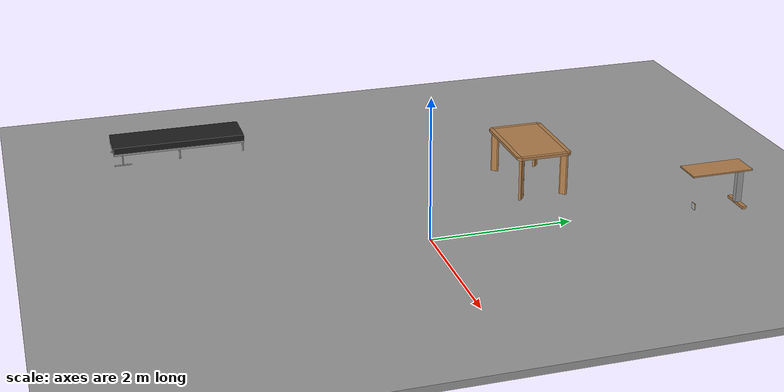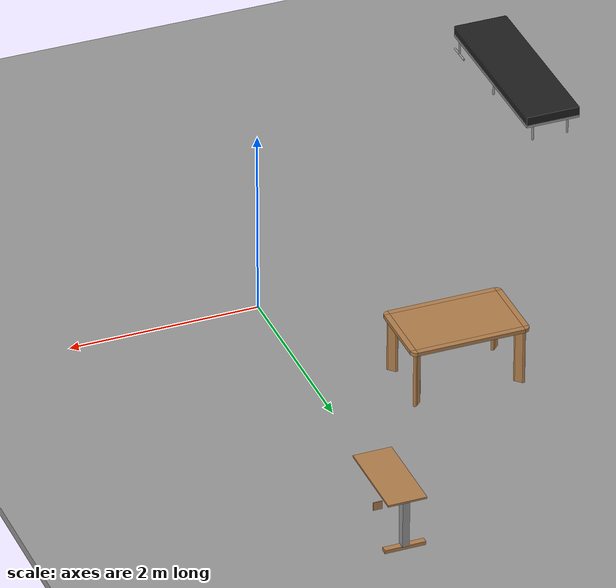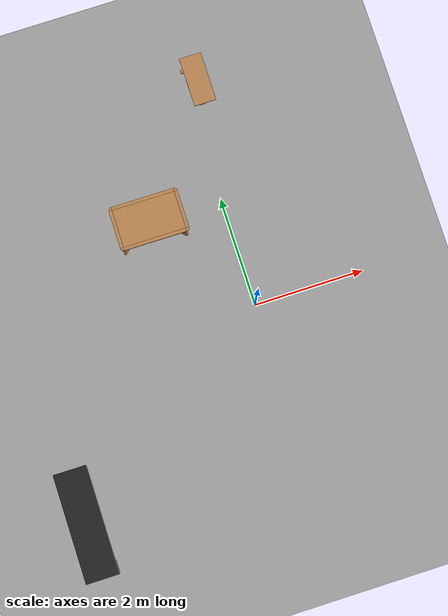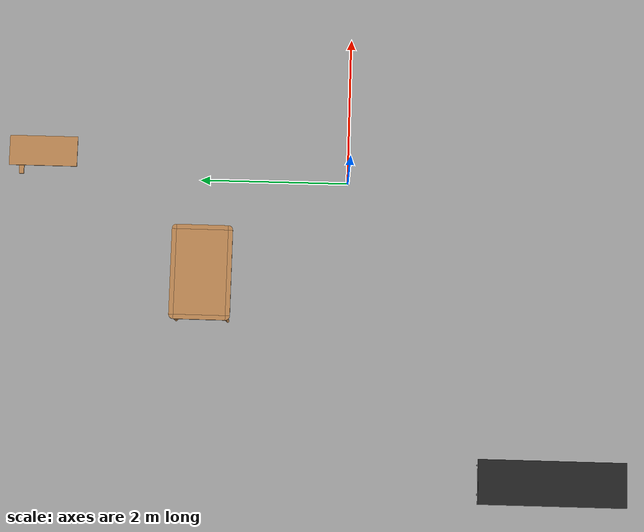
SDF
<sdf version="1.6">
 <world name="default">
  <model name="ground_plane">
   <static>1</static>
   <link name="link">
    <collision name="collision">
     <geometry><plane><normal>0 0 1</normal><size>100 100</size></plane></geometry>
     <surface><friction><ode><mu>100</mu><mu2>50</mu2></ode></friction></surface>
    </collision>
    <visual name="visual">
     <cast_shadows>0</cast_shadows>
     <geometry><plane><normal>0 0 1</normal><size>100 100</size></plane></geometry>
     <material>
      <script><uri>file://media/materials/scripts/gazebo.material</uri><name>Gazebo/Grey</name></script>
     </material>
    </visual>
   </link>
  </model>
  <model name="ground_plane_0">
   <static>1</static>
   <link name="link">
    <collision name="collision">
     <geometry><plane><normal>0 0 1</normal><size>100 100</size></plane></geometry>
     <surface><friction><ode><mu>100</mu><mu2>50</mu2></ode></friction></surface>
    </collision>
    <visual name="visual">
     <cast_shadows>0</cast_shadows>
     <geometry><plane><normal>0 0 1</normal><size>100 100</size></plane></geometry>
     <material>
      <script><uri>file://media/materials/scripts/gazebo.material</uri><name>Gazebo/Grey</name></script>
     </material>
    </visual>
   </link>
   <pose>1.4721 1.04627 0 0 -0 0</pose>
  </model>
  <model name="bed_0">
   <link name="link">
    <inertial>
     <mass>10</mass>
     <inertia><ixx>1</ixx><ixy>0</ixy><ixz>0</ixz><iyy>1</iyy><iyz>0</iyz><izz>1</izz></inertia>
    </inertial>
    <visual name="cushion">
     <pose>-0.295 -0.975 0.2875 0 -0 0</pose>
     <geometry><box><size>0.59 1.95 0.095</size></box></geometry>
     <material>
      <script>
       <uri>model://base_materials/cloth/scripts</uri>
       <uri>model://base_materials/cloth/textures</uri>
       <name>cloth/black</name>
      </script>
     </material>
    </visual>
    <collision name="collision_cushion">
     <pose>-0.295 -0.975 0.2875 0 -0 0</pose>
     <geometry><box><size>0.59 1.95 0.095</size></box></geometry>
    </collision>
    <visual name="top_frame">
     <pose>-0.295 -0.975 0.225 0 -0 0</pose>
     <geometry><box><size>0.59 1.95 0.03</size></box></geometry>
     <material>
      <script><uri>model://base_materials/color/scripts</uri><name>hsr_color/grey</name></script>
     </material>
    </visual>
    <collision name="collision_top_frame">
     <pose>-0.295 -0.975 0.225 0 -0 0</pose>
     <geometry><box><size>0.59 1.95 0.03</size></box></geometry>
    </collision>
    <visual name="right_front_pole">
     <pose>-0.075 -0.0125 0.125 0 -0 0</pose>
     <geometry><cylinder><radius>0.0125</radius><length>0.17</length></cylinder></geometry>
     <material>
      <script><uri>model://base_materials/color/scripts</uri><name>hsr_color/grey</name></script>
     </material>
    </visual>
    <collision name="collision_right_front_pole">
     <pose>-0.075 -0.0125 0.125 0 -0 0</pose>
     <geometry><cylinder><radius>0.0125</radius><length>0.17</length></cylinder></geometry>
    </collision>
    <visual name="right_front_caster">
     <pose>-0.075 -0.0125 0.02 0 1.57 0</pose>
     <geometry><cylinder><radius>0.02</radius><length>0.04</length></cylinder></geometry>
     <material><script><name>Gazebo/Black</name><uri>__default__</uri></script></material>
    </visual>
    <collision name="collision_right_front_caster">
     <pose>-0.075 -0.0125 0.02 0 1.57 0</pose>
     <geometry><cylinder><radius>0.02</radius><length>0.04</length></cylinder></geometry>
    </collision>
    <visual name="right_back_pole">
     <pose>-0.46 -0.0125 0.125 0 -0 0</pose>
     <geometry><cylinder><radius>0.0125</radius><length>0.17</length></cylinder></geometry>
     <material>
      <script><uri>model://base_materials/color/scripts</uri><name>hsr_color/grey</name></script>
     </material>
    </visual>
    <collision name="collision_right_back_pole">
     <pose>-0.46 -0.0125 0.125 0 -0 0</pose>
     <geometry><cylinder><radius>0.0125</radius><length>0.17</length></cylinder></geometry>
    </collision>
    <visual name="right_back_caster">
     <pose>-0.46 -0.0125 0.02 0 1.57 0</pose>
     <geometry><cylinder><radius>0.02</radius><length>0.04</length></cylinder></geometry>
     <material><script><name>Gazebo/Black</name><uri>__default__</uri></script></material>
    </visual>
    <collision name="collision_back_front_caster">
     <pose>-0.46 -0.0125 0.02 0 1.57 0</pose>
     <geometry><cylinder><radius>0.02</radius><length>0.04</length></cylinder></geometry>
    </collision>
    <visual name="center_front_pole">
     <pose>-0.0425 -0.975 0.105 0 -0 0</pose>
     <geometry><cylinder><radius>0.0125</radius><length>0.21</length></cylinder></geometry>
     <material>
      <script><uri>model://base_materials/color/scripts</uri><name>hsr_color/grey</name></script>
     </material>
    </visual>
    <collision name="collision_center_front_pole">
     <pose>-0.0425 -0.975 0.105 0 -0 0</pose>
     <geometry><cylinder><radius>0.0125</radius><length>0.17</length></cylinder></geometry>
    </collision>
    <visual name="center_back_pole">
     <pose>-0.5475 -0.975 0.105 0 -0 0</pose>
     <geometry><cylinder><radius>0.0125</radius><length>0.21</length></cylinder></geometry>
     <material>
      <script><uri>model://base_materials/color/scripts</uri><name>hsr_color/grey</name></script>
     </material>
    </visual>
    <collision name="collision_center_back_pole">
     <pose>-0.5475 -0.975 0.105 0 -0 0</pose>
     <geometry><cylinder><radius>0.0125</radius><length>0.17</length></cylinder></geometry>
    </collision>
    <visual name="left_front_horizon_pole">
     <pose>-0.01 -1.825 0.06 1.57 -0 0</pose>
     <geometry><cylinder><radius>0.01</radius><length>0.25</length></cylinder></geometry>
     <material>
      <script><uri>model://base_materials/color/scripts</uri><name>hsr_color/grey</name></script>
     </material>
    </visual>
    <collision name="collision_left_front_horizon_pole">
     <pose>-0.01 -1.825 0.06 1.57 -0 0</pose>
     <geometry><cylinder><radius>0.01</radius><length>0.25</length></cylinder></geometry>
    </collision>
    <visual name="left_front_vertical_pole">
     <pose>-0.01 -1.825 0.14 0 -0 0</pose>
     <geometry><cylinder><radius>0.01</radius><length>0.14</length></cylinder></geometry>
     <material>
      <script><uri>model://base_materials/color/scripts</uri><name>hsr_color/grey</name></script>
     </material>
    </visual>
    <collision name="collision_left_front_vertical_pole">
     <pose>-0.01 -1.825 0.14 0 -0 0</pose>
     <geometry><cylinder><radius>0.01</radius><length>0.14</length></cylinder></geometry>
    </collision>
    <visual name="left_front_caster_r">
     <pose>-0.02 -1.725 0.025 0 1.57 0</pose>
     <geometry><cylinder><radius>0.025</radius><length>0.04</length></cylinder></geometry>
     <material><script><name>Gazebo/Black</name><uri>__default__</uri></script></material>
    </visual>
    <collision name="collision_left_front_caster_r">
     <pose>-0.02 -1.725 0.025 0 1.57 0</pose>
     <geometry><cylinder><radius>0.025</radius><length>0.04</length></cylinder></geometry>
    </collision>
    <visual name="left_front_caster_l">
     <pose>-0.02 -1.925 0.025 0 1.57 0</pose>
     <geometry><cylinder><radius>0.025</radius><length>0.04</length></cylinder></geometry>
     <material><script><name>Gazebo/Black</name><uri>__default__</uri></script></material>
    </visual>
    <collision name="collision_left_front_caster_l">
     <pose>-0.02 -1.925 0.025 0 1.57 0</pose>
     <geometry><cylinder><radius>0.025</radius><length>0.04</length></cylinder></geometry>
    </collision>
    <visual name="left_back_horizon_pole">
     <pose>-0.58 -1.825 0.06 1.57 -0 0</pose>
     <geometry><cylinder><radius>0.01</radius><length>0.25</length></cylinder></geometry>
     <material>
      <script><uri>model://base_materials/color/scripts</uri><name>hsr_color/grey</name></script>
     </material>
    </visual>
    <collision name="collision_left_back_horizon_pole">
     <pose>-0.58 -1.825 0.06 1.57 -0 0</pose>
     <geometry><cylinder><radius>0.01</radius><length>0.25</length></cylinder></geometry>
    </collision>
    <visual name="left_back_vertical_pole">
     <pose>-0.58 -1.825 0.14 0 -0 0</pose>
     <geometry><cylinder><radius>0.01</radius><length>0.14</length></cylinder></geometry>
     <material>
      <script><uri>model://base_materials/color/scripts</uri><name>hsr_color/grey</name></script>
     </material>
    </visual>
    <collision name="collision_left_back_vertical_pole">
     <pose>-0.58 -1.825 0.14 0 -0 0</pose>
     <geometry><cylinder><radius>0.01</radius><length>0.14</length></cylinder></geometry>
    </collision>
    <visual name="left_back_caster_r">
     <pose>-0.57 -1.725 0.025 0 1.57 0</pose>
     <geometry><cylinder><radius>0.025</radius><length>0.04</length></cylinder></geometry>
     <material><script><name>Gazebo/Black</name><uri>__default__</uri></script></material>
    </visual>
    <collision name="collision_left_back_caster_r">
     <pose>-0.57 -1.725 0.025 0 1.57 0</pose>
     <geometry><cylinder><radius>0.025</radius><length>0.04</length></cylinder></geometry>
    </collision>
    <visual name="left_back_caster_l">
     <pose>-0.57 -1.925 0.025 0 1.57 0</pose>
     <geometry><cylinder><radius>0.025</radius><length>0.04</length></cylinder></geometry>
     <material><script><name>Gazebo/Black</name><uri>__default__</uri></script></material>
    </visual>
    <collision name="collision_left_back_caster_l">
     <pose>-0.57 -1.925 0.025 0 1.57 0</pose>
     <geometry><cylinder><radius>0.025</radius><length>0.04</length></cylinder></geometry>
    </collision>
    <velocity_decay><linear>0</linear><angular>0</angular></velocity_decay>
   </link>
   <static>1</static>
   <pose>-3.66464 -1.79576 0 0 -0 0</pose>
  </model>
  <model name="kitchen_table">
   <link name="link">
    <inertial>
     <mass>10</mass>
     <inertia><ixx>1</ixx><ixy>0</ixy><ixz>0</ixz><iyy>1</iyy><iyz>0</iyz><izz>1</izz></inertia>
    </inertial>
    <visual name="center_board">
     <pose>0 0 0.68 0 -0 0</pose>
     <geometry><box><size>0.68 1.13 0.04</size></box></geometry>
     <material>
      <script><uri>model://base_materials/wood/scripts/wood.material</uri><name>base_materials/wood</name></script>
     </material>
    </visual>
    <collision name="collision_center_board">
     <pose>0 0 0.68 0 -0 0</pose>
     <geometry><box><size>0.68 1.13 0.04</size></box></geometry>
    </collision>
    <visual name="front_board">
     <pose>0.37 0 0.68 0 -0 0</pose>
     <geometry><box><size>0.06 1.13 0.04</size></box></geometry>
     <material>
      <script><uri>model://base_materials/wood/scripts/wood.material</uri><name>base_materials/wood</name></script>
     </material>
    </visual>
    <collision name="collision_front_board">
     <pose>0.37 0 0.68 0 -0 0</pose>
     <geometry><box><size>0.06 1.13 0.04</size></box></geometry>
    </collision>
    <visual name="back_board">
     <pose>-0.37 0 0.68 0 -0 0</pose>
     <geometry><box><size>0.06 1.13 0.04</size></box></geometry>
     <material>
      <script><uri>model://base_materials/wood/scripts/wood.material</uri><name>base_materials/wood</name></script>
     </material>
    </visual>
    <collision name="collision_back_board">
     <pose>-0.37 0 0.68 0 -0 0</pose>
     <geometry><box><size>0.06 1.13 0.04</size></box></geometry>
    </collision>
    <visual name="right_board">
     <pose>0 0.595 0.68 0 -0 0</pose>
     <geometry><box><size>0.68 0.06 0.04</size></box></geometry>
     <material>
      <script><uri>model://base_materials/wood/scripts/wood.material</uri><name>base_materials/wood</name></script>
     </material>
    </visual>
    <collision name="collision_right_board">
     <pose>0 0.595 0.68 0 -0 0</pose>
     <geometry><box><size>0.68 0.06 0.04</size></box></geometry>
    </collision>
    <visual name="left_board">
     <pose>0 -0.595 0.68 0 -0 0</pose>
     <geometry><box><size>0.68 0.06 0.04</size></box></geometry>
     <material>
      <script><uri>model://base_materials/wood/scripts/wood.material</uri><name>base_materials/wood</name></script>
     </material>
    </visual>
    <collision name="collision_left_board">
     <pose>0 -0.595 0.68 0 -0 0</pose>
     <geometry><box><size>0.68 0.06 0.04</size></box></geometry>
    </collision>
    <visual name="front_right_corner_board">
     <pose>0.34 0.565 0.68 0 -0 0</pose>
     <geometry><cylinder><radius>0.06</radius><length>0.039</length></cylinder></geometry>
     <material>
      <script><uri>model://base_materials/wood/scripts/wood.material</uri><name>base_materials/wood</name></script>
     </material>
    </visual>
    <collision name="collision_front_right_corner_board">
     <pose>0.34 0.565 0.68 0 -0 0</pose>
     <geometry><cylinder><radius>0.06</radius><length>0.039</length></cylinder></geometry>
    </collision>
    <visual name="front_left_corner_board">
     <pose>0.34 -0.565 0.68 0 -0 0</pose>
     <geometry><cylinder><radius>0.06</radius><length>0.039</length></cylinder></geometry>
     <material>
      <script><uri>model://base_materials/wood/scripts/wood.material</uri><name>base_materials/wood</name></script>
     </material>
    </visual>
    <collision name="collision_front_left_corner_board">
     <pose>0.34 -0.565 0.68 0 -0 0</pose>
     <geometry><cylinder><radius>0.06</radius><length>0.039</length></cylinder></geometry>
    </collision>
    <visual name="front_back_right_corner_board">
     <pose>-0.34 0.565 0.68 0 -0 0</pose>
     <geometry><cylinder><radius>0.06</radius><length>0.039</length></cylinder></geometry>
     <material>
      <script><uri>model://base_materials/wood/scripts/wood.material</uri><name>base_materials/wood</name></script>
     </material>
    </visual>
    <collision name="collision_back_right_corner_board">
     <pose>-0.34 0.565 0.68 0 -0 0</pose>
     <geometry><cylinder><radius>0.06</radius><length>0.039</length></cylinder></geometry>
    </collision>
    <visual name="front_back_left_corner_board">
     <pose>-0.34 -0.565 0.68 0 -0 0</pose>
     <geometry><cylinder><radius>0.06</radius><length>0.039</length></cylinder></geometry>
     <material>
      <script><uri>model://base_materials/wood/scripts/wood.material</uri><name>base_materials/wood</name></script>
     </material>
    </visual>
    <collision name="collision_back_left_corner_board">
     <pose>-0.34 -0.565 0.68 0 -0 0</pose>
     <geometry><cylinder><radius>0.06</radius><length>0.039</length></cylinder></geometry>
    </collision>
    <visual name="front_left_corner_frame1">
     <pose>0.345858 -0.57086 0.33 0 -0 0</pose>
     <geometry><cylinder><radius>0.02</radius><length>0.66</length></cylinder></geometry>
     <material>
      <script><uri>model://base_materials/wood/scripts/wood.material</uri><name>base_materials/wood</name></script>
     </material>
    </visual>
    <collision name="collision_front_left_corner_frame1">
     <pose>0.345858 -0.57086 0.33 0 -0 0</pose>
     <geometry><cylinder><radius>0.02</radius><length>0.66</length></cylinder></geometry>
    </collision>
    <visual name="front_left_corner_frame2">
     <pose>0.317574 -0.54257 0.33 0 -0 0.7854</pose>
     <geometry><box><size>0.04 0.08 0.66</size></box></geometry>
     <material>
      <script><uri>model://base_materials/wood/scripts/wood.material</uri><name>base_materials/wood</name></script>
     </material>
    </visual>
    <collision name="collision_front_left_corner_frame2">
     <pose>0.317574 -0.54257 0.33 0 -0 0.7854</pose>
     <geometry><box><size>0.04 0.08 0.66</size></box></geometry>
    </collision>
    <visual name="front_left_corner_frame3">
     <pose>0.289289 -0.51429 0.33 0 -0 0</pose>
     <geometry><cylinder><radius>0.02</radius><length>0.66</length></cylinder></geometry>
     <material>
      <script><uri>model://base_materials/wood/scripts/wood.material</uri><name>base_materials/wood</name></script>
     </material>
    </visual>
    <collision name="collision_front_left_corner_frame3">
     <pose>0.289289 -0.51429 0.33 0 -0 0</pose>
     <geometry><cylinder><radius>0.02</radius><length>0.66</length></cylinder></geometry>
    </collision>
    <visual name="front_right_corner_frame1">
     <pose>0.345858 0.57086 0.33 0 -0 0</pose>
     <geometry><cylinder><radius>0.02</radius><length>0.66</length></cylinder></geometry>
     <material>
      <script><uri>model://base_materials/wood/scripts/wood.material</uri><name>base_materials/wood</name></script>
     </material>
    </visual>
    <collision name="collision_front_right_corner_frame1">
     <pose>0.345858 0.57086 0.33 0 -0 0</pose>
     <geometry><cylinder><radius>0.02</radius><length>0.66</length></cylinder></geometry>
    </collision>
    <visual name="front_right_corner_frame2">
     <pose>0.317574 0.54257 0.33 0 0 -0.7854</pose>
     <geometry><box><size>0.04 0.08 0.66</size></box></geometry>
     <material>
      <script><uri>model://base_materials/wood/scripts/wood.material</uri><name>base_materials/wood</name></script>
     </material>
    </visual>
    <collision name="collision_front_right_corner_frame2">
     <pose>0.317574 0.54257 0.33 0 0 -0.7854</pose>
     <geometry><box><size>0.04 0.08 0.66</size></box></geometry>
    </collision>
    <visual name="front_right_corner_frame3">
     <pose>0.289289 0.51429 0.33 0 -0 0</pose>
     <geometry><cylinder><radius>0.02</radius><length>0.66</length></cylinder></geometry>
     <material>
      <script><uri>model://base_materials/wood/scripts/wood.material</uri><name>base_materials/wood</name></script>
     </material>
    </visual>
    <collision name="collision_front_right_corner_frame3">
     <pose>0.289289 0.51429 0.33 0 -0 0</pose>
     <geometry><cylinder><radius>0.02</radius><length>0.66</length></cylinder></geometry>
    </collision>
    <visual name="back_left_corner_frame1">
     <pose>-0.345858 -0.57086 0.33 0 -0 0</pose>
     <geometry><cylinder><radius>0.02</radius><length>0.66</length></cylinder></geometry>
     <material>
      <script><uri>model://base_materials/wood/scripts/wood.material</uri><name>base_materials/wood</name></script>
     </material>
    </visual>
    <collision name="collision_back_left_corner_frame1">
     <pose>-0.345858 -0.57086 0.33 0 -0 0</pose>
     <geometry><cylinder><radius>0.02</radius><length>0.66</length></cylinder></geometry>
    </collision>
    <visual name="back_left_corner_frame2">
     <pose>-0.317574 -0.54257 0.33 0 0 -0.7854</pose>
     <geometry><box><size>0.04 0.08 0.66</size></box></geometry>
     <material>
      <script><uri>model://base_materials/wood/scripts/wood.material</uri><name>base_materials/wood</name></script>
     </material>
    </visual>
    <collision name="collision_back_left_corner_frame2">
     <pose>-0.317574 -0.54257 0.33 0 0 -0.7854</pose>
     <geometry><box><size>0.04 0.08 0.66</size></box></geometry>
    </collision>
    <visual name="back_left_corner_frame3">
     <pose>-0.289289 -0.51429 0.33 0 -0 0</pose>
     <geometry><cylinder><radius>0.02</radius><length>0.66</length></cylinder></geometry>
     <material>
      <script><uri>model://base_materials/wood/scripts/wood.material</uri><name>base_materials/wood</name></script>
     </material>
    </visual>
    <collision name="collision_back_left_corner_frame3">
     <pose>-0.289289 -0.51429 0.33 0 -0 0</pose>
     <geometry><cylinder><radius>0.02</radius><length>0.66</length></cylinder></geometry>
    </collision>
    <visual name="back_right_corner_frame1">
     <pose>-0.345858 0.57086 0.33 0 -0 0</pose>
     <geometry><cylinder><radius>0.02</radius><length>0.66</length></cylinder></geometry>
     <material>
      <script><uri>model://base_materials/wood/scripts/wood.material</uri><name>base_materials/wood</name></script>
     </material>
    </visual>
    <collision name="collision_back_right_corner_frame1">
     <pose>-0.345858 0.57086 0.33 0 -0 0</pose>
     <geometry><cylinder><radius>0.02</radius><length>0.66</length></cylinder></geometry>
    </collision>
    <visual name="back_right_corner_frame2">
     <pose>-0.317574 0.54257 0.33 0 -0 0.7854</pose>
     <geometry><box><size>0.04 0.08 0.66</size></box></geometry>
     <material>
      <script><uri>model://base_materials/wood/scripts/wood.material</uri><name>base_materials/wood</name></script>
     </material>
    </visual>
    <collision name="collision_back_right_corner_frame2">
     <pose>-0.317574 0.54257 0.33 0 -0 0.7854</pose>
     <geometry><box><size>0.04 0.08 0.66</size></box></geometry>
    </collision>
    <visual name="back_right_corner_frame3">
     <pose>-0.289289 0.51429 0.33 0 -0 0</pose>
     <geometry><cylinder><radius>0.02</radius><length>0.66</length></cylinder></geometry>
     <material>
      <script><uri>model://base_materials/wood/scripts/wood.material</uri><name>base_materials/wood</name></script>
     </material>
    </visual>
    <collision name="collision_back_right_corner_frame3">
     <pose>-0.289289 0.51429 0.33 0 -0 0</pose>
     <geometry><cylinder><radius>0.02</radius><length>0.66</length></cylinder></geometry>
    </collision>
    <velocity_decay><linear>0</linear><angular>0</angular></velocity_decay>
   </link>
   <static>1</static>
   <pose>-1.34001 1.9081 0 0 -0 1.56834</pose>
  </model>
  <model name="bed_table">
   <link name="link">
    <inertial>
     <pose>0 0.449 0.001 0 -0 0</pose>
     <mass>10</mass>
     <inertia><ixx>1</ixx><ixy>0</ixy><ixz>0</ixz><iyy>1</iyy><iyz>0</iyz><izz>1</izz></inertia>
    </inertial>
    <visual name="top_board">
     <pose>0 0.449 0.625 0 -0 0</pose>
     <geometry><box><size>0.398 0.898 0.02</size></box></geometry>
     <material>
      <script><uri>model://base_materials/wood/scripts/wood.material</uri><name>base_materials/wood</name></script>
     </material>
    </visual>
    <collision name="collision_top_board">
     <pose>0 0.449 0.625 0 -0 0</pose>
     <geometry><box><size>0.398 0.898 0.02</size></box></geometry>
    </collision>
    <visual name="right_pole">
     <pose>0 0.817 0.3515 0 -0 0</pose>
     <geometry><box><size>0.072 0.094 0.527</size></box></geometry>
     <material>
      <script><uri>model://base_materials/color/scripts</uri><name>hsr_color/grey</name></script>
     </material>
    </visual>
    <collision name="collision_right_pole">
     <pose>0 0.817 0.3515 0 -0 0</pose>
     <geometry><box><size>0.072 0.094 0.527</size></box></geometry>
    </collision>
    <visual name="right_bottom_pole">
     <pose>0 0.8225 0.044 0 -0 0</pose>
     <geometry><box><size>0.42 0.063 0.088</size></box></geometry>
     <material>
      <script><uri>model://base_materials/wood/scripts/wood.material</uri><name>base_materials/wood</name></script>
     </material>
    </visual>
    <collision name="collision_right_bottom_pole">
     <pose>0 0.8225 0.044 0 -0 0</pose>
     <geometry><box><size>0.42 0.063 0.088</size></box></geometry>
    </collision>
    <visual name="bottom_center_pole">
     <pose>0 0.502 0.03 0 -0 0</pose>
     <geometry><box><size>0.06 0.578 0.03</size></box></geometry>
     <material>
      <script><uri>model://base_materials/wood/scripts/wood.material</uri><name>base_materials/wood</name></script>
     </material>
    </visual>
    <collision name="collision_bottom_center_pole">
     <pose>0 0.502 0.03 0 -0 0</pose>
     <geometry><box><size>0.06 0.578 0.03</size></box></geometry>
    </collision>
    <visual name="left_bottom_pole">
     <pose>0 0.18 0.0325 0 -0 0</pose>
     <geometry><box><size>0.418 0.066 0.025</size></box></geometry>
     <material>
      <script><uri>model://base_materials/wood/scripts/wood.material</uri><name>base_materials/wood</name></script>
     </material>
    </visual>
    <collision name="collision_left_bottom_pole">
     <pose>0 0.18 0.0325 0 -0 0</pose>
     <geometry><box><size>0.418 0.066 0.025</size></box></geometry>
    </collision>
    <visual name="marker_0010">
     <pose>0 0.14 0.093 0 -0 0</pose>
     <geometry><box><size>0.09 0.001 0.09</size></box></geometry>
     <material>
      <script>
       <uri>model://bed_table/marker/0010/scripts</uri>
       <uri>model://bed_table/marker/0010/textures</uri>
       <name>Marker/0010</name>
      </script>
     </material>
    </visual>
    <collision name="collision_marker_0010">
     <pose>0 0.14 0.093 0 -0 0</pose>
     <geometry><box><size>0.09 0.001 0.09</size></box></geometry>
    </collision>
    <visual name="marker_0010_back_plate">
     <pose>0 0.146 0.093 0 -0 0</pose>
     <geometry><box><size>0.09 0.01 0.09</size></box></geometry>
     <material>
      <script><uri>model://base_materials/wood/scripts/wood.material</uri><name>base_materials/wood</name></script>
     </material>
    </visual>
    <collision name="collision_marker_0010_back_plate">
     <pose>0 0.146 0.093 0 -0 0</pose>
     <geometry><box><size>0.09 0.01 0.09</size></box></geometry>
    </collision>
    <velocity_decay><linear>0</linear><angular>0</angular></velocity_decay>
   </link>
   <static>1</static>
   <pose>0.23006 3.60434 0 0 -0 0</pose>
  </model>
 </world>
</sdf>
